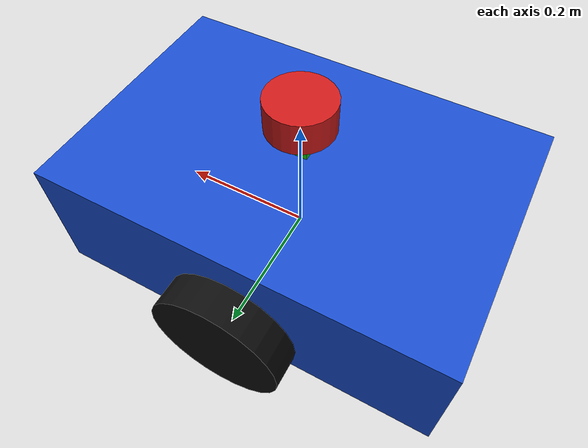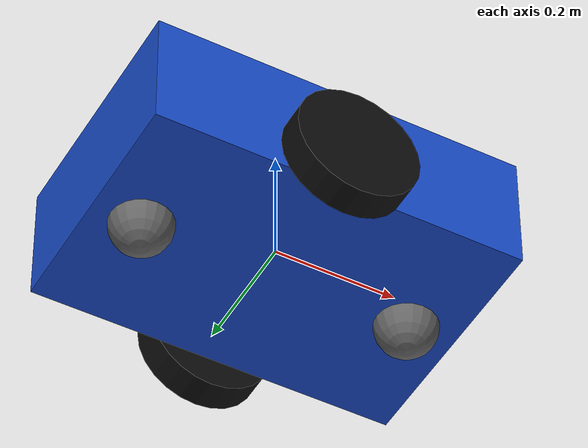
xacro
<?xml version="1.0"?>

<robot
  xmlns:xacro="http://www.ros.org/wiki/xacro"
  name="my_robot">

  <!-- ROBOT DIMENSIONS                                      -->

  <xacro:property name="body_length" value="0.60"/>
  <xacro:property name="body_width" value="0.40"/>
  <xacro:property name="body_height" value="0.20"/>

  <xacro:property name="wheel_radius" value="0.10"/>
  <xacro:property name="wheel_width" value="0.05"/>

  <xacro:property name="wheel_separation" value="0.45"/>

  <xacro:property name="body_mass" value="5.0"/>
  <xacro:property name="wheel_mass" value="0.5"/>

  <!-- BASE LINK                                             -->

  <link name="base_link">

    <visual>

      <!-- Raise chassis to create ground clearance -->
      <origin xyz="0 0 0.05" rpy="0 0 0"/>

      <geometry>
        <box size="${body_length} ${body_width} ${body_height}"/>
      </geometry>

      <material name="blue">
        <color rgba="0.1 0.3 0.8 1.0"/>
      </material>

    </visual>

    <collision>

      <!-- Same position as visual -->
      <origin xyz="0 0 0.05" rpy="0 0 0"/>

      <geometry>
        <box size="${body_length} ${body_width} ${body_height}"/>
      </geometry>

    </collision>

    <inertial>

      <!-- Keep center of mass aligned with chassis -->
      <origin xyz="0 0 0.05" rpy="0 0 0"/>

      <mass value="${body_mass}"/>

      <inertia
        ixx="0.0833"
        ixy="0.0"
        ixz="0.0"
        iyy="0.1667"
        iyz="0.0"
        izz="0.2167"/>

    </inertial>

  </link>

  <!-- LEFT WHEEL                                            -->

  <link name="left_wheel">

    <visual>

      <origin xyz="0 0 0" rpy="1.5708 0 0"/>

      <geometry>
        <cylinder
          radius="${wheel_radius}"
          length="${wheel_width}"/>
      </geometry>

      <material name="black">
        <color rgba="0.05 0.05 0.05 1.0"/>
      </material>

    </visual>

    <collision>

      <origin xyz="0 0 0" rpy="1.5708 0 0"/>

      <geometry>
        <cylinder
          radius="${wheel_radius}"
          length="${wheel_width}"/>
      </geometry>

    </collision>

    <inertial>

      <mass value="${wheel_mass}"/>

      <inertia
        ixx="0.0029"
        ixy="0.0"
        ixz="0.0"
        iyy="0.0050"
        iyz="0.0"
        izz="0.0029"/>

    </inertial>

  </link>

  <joint name="left_wheel_joint" type="continuous">

    <parent link="base_link"/>
    <child link="left_wheel"/>

    <origin
      xyz="0 ${wheel_separation / 2.0} 0"
      rpy="0 0 0"/>

    <axis xyz="0 -1 0"/>

  </joint>

  <!-- RIGHT WHEEL                                           -->

  <link name="right_wheel">

    <visual>

      <origin xyz="0 0 0" rpy="1.5708 0 0"/>

      <geometry>
        <cylinder
          radius="${wheel_radius}"
          length="${wheel_width}"/>
      </geometry>

      <material name="black"/>

    </visual>

    <collision>

      <origin xyz="0 0 0" rpy="1.5708 0 0"/>

      <geometry>
        <cylinder
          radius="${wheel_radius}"
          length="${wheel_width}"/>
      </geometry>

    </collision>

    <inertial>

      <mass value="${wheel_mass}"/>

      <inertia
        ixx="0.0029"
        ixy="0.0"
        ixz="0.0"
        iyy="0.0050"
        iyz="0.0"
        izz="0.0029"/>

    </inertial>

  </link>

  <joint name="right_wheel_joint" type="continuous">

    <parent link="base_link"/>
    <child link="right_wheel"/>

    <origin
      xyz="0 ${-wheel_separation / 2.0} 0"
      rpy="0 0 0"/>

    <axis xyz="0 -1 0"/>

  </joint>

  <!-- FRONT CASTER                                          -->

  <link name="front_caster_link">

    <visual>

      <geometry>
        <sphere radius="0.05"/>
      </geometry>

      <material name="gray">
        <color rgba="0.4 0.4 0.4 1.0"/>
      </material>

    </visual>

    <collision>

      <geometry>
        <sphere radius="0.05"/>
      </geometry>

    </collision>

    <inertial>

      <mass value="0.05"/>

      <inertia
        ixx="0.00005"
        ixy="0.0"
        ixz="0.0"
        iyy="0.00005"
        iyz="0.0"
        izz="0.00005"/>

    </inertial>

  </link>

  <joint name="front_caster_joint" type="fixed">

    <parent link="base_link"/>
    <child link="front_caster_link"/>

    <!--
      Caster radius = 0.05
      Center z = -0.05
      Bottom = -0.10

      Same ground level as drive wheels.
    -->
    <origin xyz="0.22 0 -0.05" rpy="0 0 0"/>

  </joint>

  <!-- REAR CASTER                                           -->

  <link name="rear_caster_link">

    <visual>

      <geometry>
        <sphere radius="0.05"/>
      </geometry>

      <material name="gray"/>

    </visual>

    <collision>

      <geometry>
        <sphere radius="0.05"/>
      </geometry>

    </collision>

    <inertial>

      <mass value="0.05"/>

      <inertia
        ixx="0.00005"
        ixy="0.0"
        ixz="0.0"
        iyy="0.00005"
        iyz="0.0"
        izz="0.00005"/>

    </inertial>

  </link>

  <joint name="rear_caster_joint" type="fixed">

    <parent link="base_link"/>
    <child link="rear_caster_link"/>

    <origin xyz="-0.22 0 -0.05" rpy="0 0 0"/>

  </joint>

  <!-- LIDAR LINK                                            -->

  <link name="lidar_link">

    <visual>

      <geometry>
        <cylinder
          radius="0.05"
          length="0.05"/>
      </geometry>

      <material name="red">
        <color rgba="0.8 0.1 0.1 1.0"/>
      </material>

    </visual>

    <collision>

      <geometry>
        <cylinder
          radius="0.05"
          length="0.05"/>
      </geometry>

    </collision>

    <inertial>

      <mass value="0.10"/>

      <inertia
        ixx="0.0001"
        ixy="0.0"
        ixz="0.0"
        iyy="0.0001"
        iyz="0.0"
        izz="0.0001"/>

    </inertial>

  </link>

  <joint name="lidar_joint" type="fixed">

    <parent link="base_link"/>
    <child link="lidar_link"/>

    <!--
      Chassis top is approximately z = 0.15 m.
      Put the LiDAR safely above it.
    -->
    <origin xyz="0 0 0.23" rpy="0 0 0"/>

  </joint>

<!-- IMU LINK                                              -->

<link name="imu_link">

  <visual>
    <geometry>
      <box size="0.04 0.04 0.02"/>
    </geometry>

    <material name="green">
      <color rgba="0.1 0.8 0.1 1.0"/>
    </material>
  </visual>

  <collision>
    <geometry>
      <box size="0.04 0.04 0.02"/>
    </geometry>
  </collision>

  <inertial>
    <mass value="0.05"/>

    <inertia
      ixx="0.00001"
      ixy="0.0"
      ixz="0.0"
      iyy="0.00001"
      iyz="0.0"
      izz="0.00001"/>
  </inertial>

</link>

<!-- IMU JOINT                                             -->

<joint name="imu_joint" type="fixed">

  <parent link="base_link"/>
  <child link="imu_link"/>

  <!-- Mount IMU near the center of the chassis -->
  <origin xyz="0 0 0.18" rpy="0 0 0"/>

</joint>

  <!-- GAZEBO WHEEL FRICTION                                 -->

  <gazebo reference="left_wheel">
    <mu1>1.0</mu1>
    <mu2>1.0</mu2>
  </gazebo>

  <gazebo reference="right_wheel">
    <mu1>1.0</mu1>
    <mu2>1.0</mu2>
  </gazebo>

  <!-- GAZEBO CASTER FRICTION                                -->

  <gazebo reference="front_caster_link">

    <!-- Low friction allows easy turning -->
    <mu1>0.01</mu1>
    <mu2>0.01</mu2>

  </gazebo>

  <gazebo reference="rear_caster_link">

    <mu1>0.01</mu1>
    <mu2>0.01</mu2>

  </gazebo>

  <!-- LIDAR SENSOR                                          -->

  <gazebo reference="lidar_link">

    <sensor name="lidar" type="gpu_lidar">

      <pose>0 0 0 0 0 3.14159</pose>

      <topic>/scan</topic>

      <!-- LaserScan measurements are expressed in lidar_link -->
      <gz_frame_id>lidar_link</gz_frame_id>

      <update_rate>10</update_rate>

      <always_on>true</always_on>

      <visualize>true</visualize>

      <lidar>

        <scan>

          <horizontal>

            <samples>360</samples>

            <resolution>1</resolution>

            <min_angle>-3.14159</min_angle>
            <max_angle>3.14159</max_angle>

          </horizontal>

        </scan>

        <range>

          <min>0.12</min>
          <max>10.0</max>
          <resolution>0.01</resolution>

        </range>

      </lidar>

    </sensor>

  </gazebo>

  <!-- DIFFERENTIAL DRIVE PLUGIN                             -->

  <gazebo>

    <plugin
      filename="gz-sim-diff-drive-system"
      name="gz::sim::systems::DiffDrive">

      <left_joint>right_wheel_joint</left_joint>
      <right_joint>left_wheel_joint</right_joint>

      <wheel_separation>${wheel_separation}</wheel_separation>
      <wheel_radius>${wheel_radius}</wheel_radius>

      <topic>/cmd_vel</topic>

      <odom_topic>/odom</odom_topic>

      <frame_id>odom</frame_id>
      <child_frame_id>base_link</child_frame_id>

    </plugin>

  </gazebo>

  <!-- JOINT STATE PUBLISHER                                 -->

  <gazebo>

    <plugin
      filename="gz-sim-joint-state-publisher-system"
      name="gz::sim::systems::JointStatePublisher">

      <topic>joint_states</topic>

      <joint_name>left_wheel_joint</joint_name>
      <joint_name>right_wheel_joint</joint_name>

    </plugin>

  </gazebo>

  <!-- IMU SENSOR                                            -->

  <gazebo reference="imu_link">

    <sensor name="imu_sensor" type="imu">

      <topic>/imu</topic>

      <update_rate>50</update_rate>

      <always_on>true</always_on>

    </sensor>

  </gazebo>

</robot>
